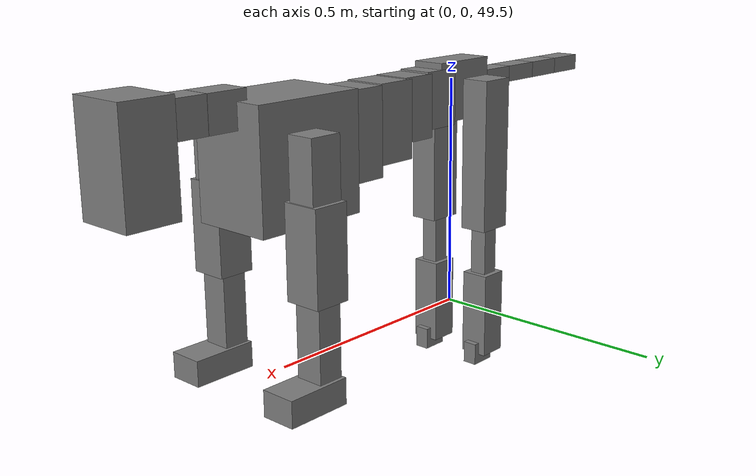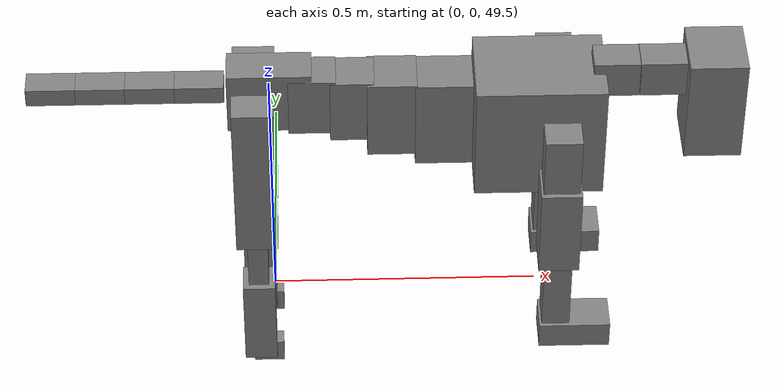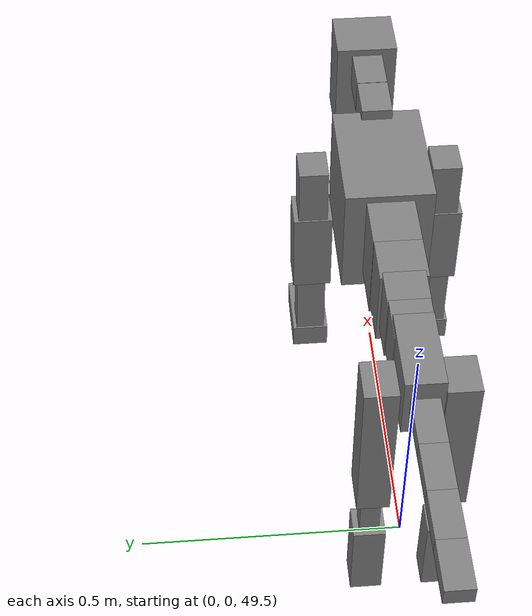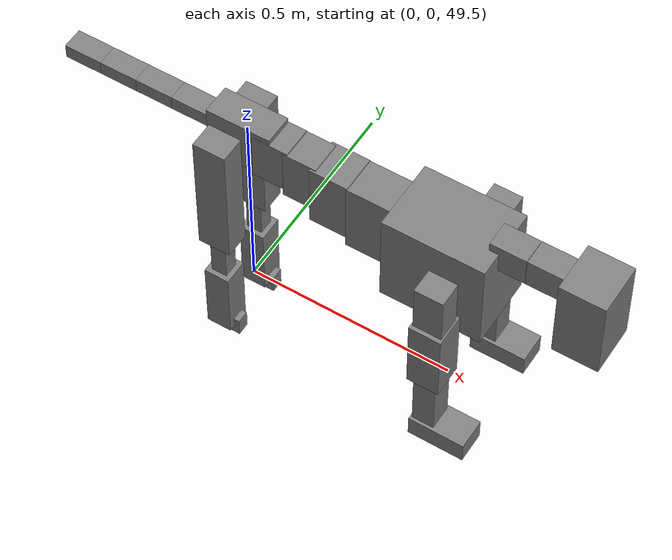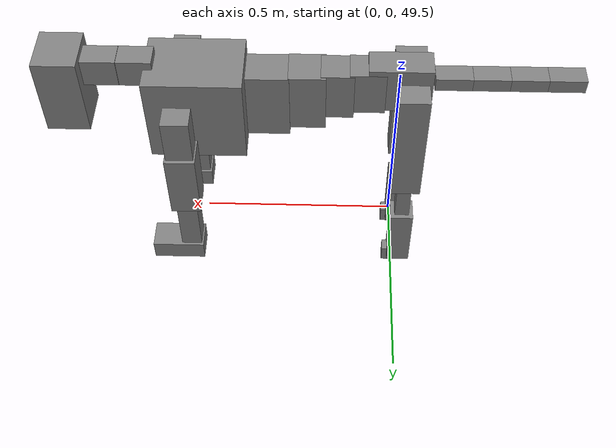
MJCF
<mujoco model="dog">

    <default>
        <joint armature="0.02" stiffness="1" damping="0.2" limited="true"/>
        <geom condim="3" friction="1 0.05 0.05" margin="0.01"/>
        <motor ctrllimited="true" ctrlrange="-1.0 1.0" forcelimited="true" gear="50"/>
    </default>

    <compiler inertiafromgeom="true" angle="radian"/>

    <option timestep="0.016" iterations="50" tolerance="1e-10" solver="Newton" jacobian="dense" cone="pyramidal"/>

    <size nconmax="20000" njmax="60000" nstack="5000000"/>
    <visual>
        <map force="0.1" zfar="30"/>
        <rgba haze="0.15 0.25 0.35 1"/>
        <quality shadowsize="2048"/>
        <global offwidth="800" offheight="800"/>
    </visual>

    <asset>
        <texture type="skybox" builtin="gradient" rgb1="0.3 0.5 0.7" rgb2="0 0 0" width="512" height="512"/>
        <texture name="texplane" type="2d" builtin="checker" rgb1=".2 .3 .4" rgb2=".1 0.15 0.2" width="512" height="512"
                 mark="cross" markrgb=".8 .8 .8"/>
        <texture name="texgeom" type="cube" builtin="flat" mark="cross" width="127" height="1278" rgb1="0.8 0.6 0.4"
                 rgb2="0.8 0.6 0.4" markrgb="1 1 1" random="0.01"/>

        <material name="matplane" reflectance="0.3" texture="texplane" texrepeat="1 1" texuniform="true"/>
        <material name="matgeom" texture="texgeom" texuniform="true" rgba="0.8 0.6 .4 1"/>
    </asset>

    <worldbody>
        <geom name="floor" pos="0 0 0" size="0 0 .25" type="plane" material="matplane" condim="3"/>

        <light directional="false" diffuse=".2 .2 .2" specular="0 0 0" pos="0 0 5" dir="0 0 -1" castshadow="false"/>
        <light mode="targetbodycom" target="torso" directional="false" diffuse=".8 .8 .8" specular="0.3 0.3 0.3"
               pos="0 0 4.0" dir="0 0 -1"/>

        <body name="root" pos="0 0 50">
            <freejoint name="root_1"/>
            <geom type="box" pos="0 0 -0.02" size="0.0774  0.0358  0.063" density="2030"/>

            <body name="spine1" pos="0.054 0 0">
                <joint name="spine1_y" axis="0 1 0" range="0 0.7" limited="true"/>
                <geom type="box" pos="0.02375 0 -0.03" size="0.04375  0.0375  0.05985" density="2030"/>

                <body name="spine2" pos="0.0612 0 0">
                    <joint name="spine2_y" axis="0 1 0" range="-0.15 0.15" limited="true"/>
                    <geom type="box" pos="0.03555  0  -0.04" size="0.04055  0.039  0.06615" density="2030"/>

                    <body name="spine3" pos="0.0730 0 0">
                        <joint name="spine3_y" axis="0 1 0" range="-0.15 0.15" limited="true"/>
                        <geom type="box" pos="0.03555  0  -0.057" size="0.04555  0.0445  0.081" density="2030"/>

                        <body name="spine4" pos="0.0780 0 0">
                            <joint name="spine4_y" axis="0 1 0" range="-0.15 0.15" limited="true"/>
                            <geom type="box" pos="0.05265  0  -0.07" size="0.05265  0.045  0.09135" density="2030"/>

                            <body name="torso" pos="0.1082 0 0">
                                <joint name="torso_y" axis="0 1 0" range="-0.15 0.15" limited="true"/>
                                <geom type="box" pos="0.11925  0  -0.085" size="0.11925  0.085  0.11745"
                                      density="2030"/>

                                <body name="neck1" pos="0.2160  0   0.0180">
                                    <joint name="neck1_y" axis="0 1 0" range="-1.2  -1" limited="true"/>
                                    <geom type="box" pos="0.0423  0  0" size="0.0423  0.03  0.036" density="2325"/>

                                    <body name="neck2" pos="0.0853  0  0">
                                        <joint name="neck2_y" axis="0 1 0" range="0.1  0" limited="true"/>
                                        <geom type="box" pos="0.0423  0  0" size="0.0423  0.03  0.036" density="2325"/>

                                        <body name="head" pos="0.0853  0  0">
                                            <joint name="head_y" axis="0 1 0" range="-0.3  -0.2" limited="true"/>
                                            <geom type="box" pos="0.0531  0  -0.055" size="0.0531  0.06  0.1044"
                                                  density="4030"/>

                                        </body>
                                    </body>
                                </body>

                                <body name="front_shoulder" pos="0.156  0   -0.0480">
                                    <joint name="front_shoulder_y" axis="0 1 0" range="-1 1.5" limited="true"/>
                                    <geom type="box" pos="0 0.13 -0.0467" size="0.0337  0.0288  0.0734" density="1158"/>
                                    <geom type="box" pos="0 -0.13 -0.0467" size="0.0337  0.0288  0.0734"
                                          density="1158"/>

                                    <body name="front_elbow" pos="0  0  -0.0934">
                                        <joint name="front_elbow_y" axis="0 1 0" range="-2 0" limited="true"/>
                                        <geom type="box" pos="0 0.13 -0.0917" size="0.0376  0.0385  0.0917"
                                              density="1081"/>
                                        <geom type="box" pos="0 -0.13 -0.0917" size="0.0376  0.0385  0.0917"
                                              density="1081"/>

                                        <body name="front_wrist" pos="0  0  -0.1833">
                                            <joint name="front_wrist_y" axis="0 1 0" range="-0.2 0" limited="true"/>
                                            <geom type="box" pos="0 0.13 -0.0808" size="0.0262  0.0291  0.0940"
                                                  density="1664"/>
                                            <geom type="box" pos="0 -0.13 -0.0808" size="0.0262  0.0291  0.0940"
                                                  density="1664"/>

                                            <body name="front_finger_end" pos="0  0  -0.1617">
                                                <joint name="front_finger_y" axis="0 1 0" range="-0.4 1"
                                                       limited="true"/>
                                                <geom type="box" pos="0.0365  0.13  -0.0113"
                                                      size="0.0668  0.0365  0.0263" density="1515"/>
                                                <geom type="box" pos="0.0365  -0.13  -0.0113"
                                                      size="0.0668  0.0365  0.0263" density="1515"/>

                                            </body>

                                        </body>
                                    </body>
                                </body>

                            </body>
                        </body>
                    </body>
                </body>
            </body>

            <body name="back_hip" pos="-0.03 0 -0.018">
                <joint name="back_hip_y" axis="0 1 0" range="-1.5 0.3" limited="true"/>
                <geom type="box" pos="0 0.07 -0.1403" size="0.0390  0.0306  0.1631" density="1154"/>
                <geom type="box" pos="0 -0.07 -0.1403" size="0.0390  0.0306  0.1631" density="1154"/>

                <body name="back_knee" pos="0  0  -0.2805">
                    <joint name="back_knee_y" axis="0 1 0" range="0 2.8" limited="true"/>
                    <geom type="box" pos="0 0.07 -0.0686" size="0.0190  0.0187  0.0841" density="1227"/>
                    <geom type="box" pos="0 -0.07 -0.0686" size="0.0190  0.0187  0.0841" density="1227"/>

                    <body name="back_ankle" pos="0  0  -0.1371">
                        <joint name="back_ankle_y" axis="0 1 0" range="-2.2 0" limited="true"/>
                        <geom type="box" pos="0 0.07 -0.0808" size="0.0304  0.0304  0.0921" density="1284"/>
                        <geom type="box" pos="0 -0.07 -0.0808" size="0.0304  0.0304  0.0921" density="1284"/>

                        <body name="back_toe_end" pos="0  0  -0.1616">
                            <joint name="back_toe_y" axis="0 1 0" range="-0.4 1" limited="true"/>
                            <geom type="box" pos="0.0155  0.07  -0.0086" size="0.0284  0.0155  0.0236" density="1515"/>
                            <geom type="box" pos="0.0155  -0.07  -0.0086" size="0.0284  0.0155  0.0236" density="1515"/>

                        </body>
                    </body>
                </body>
            </body>

            <body name="tail1" pos="-0.074 0 -0.006">
                <joint name="tail1_y" axis="0 1 0" range="-0.2 0.2" limited="true"/>
                <geom type="box" pos="-0.0536  0  0" size="0.045  0.025  0.0175" density="1587"/>

                <body name="tail2" pos="-0.09 0 0">
                    <joint name="tail2_y" axis="0 1 0" range="-0.2 0.2" limited="true"/>
                    <geom type="box" pos="-0.0536  0  0" size="0.045  0.025  0.0175" density="1587"/>

                    <body name="tail3" pos="-0.09 0 0">
                        <joint name="tail3_y" axis="0 1 0" range="-0.2 0.2" limited="true"/>
                        <geom type="box" pos="-0.0536  0  0" size="0.045  0.025  0.0175" density="1587"/>

                        <body name="tail4" pos="-0.09 0 0">
                            <joint name="tail4_y" axis="0 1 0" range="-0.2 0.2" limited="true"/>
                            <geom type="box" pos="-0.0536  0  0" size="0.045  0.025  0.0175" density="1587"/>

                        </body>
                    </body>
                </body>
            </body>
        </body>
    </worldbody>

    <actuator>
        <motor joint="spine1_y" forcerange="-150 150     "/>
        <motor joint="spine2_y" forcerange="-150 150     "/>
        <motor joint="spine3_y" forcerange="-150 150     "/>
        <motor joint="spine4_y" forcerange="-150 150     "/>
        <motor joint="torso_y" forcerange="-150 150     "/>
        <motor joint="neck1_y" forcerange="-100 100       "/>
        <motor joint="neck2_y" forcerange="-100 100       "/>
        <motor joint="head_y" forcerange="-150 150       "/>
        <motor joint="front_shoulder_y" forcerange="-122.42 169.60"/>
        <motor joint="front_elbow_y" forcerange="-193.00 186.88"/>
        <motor joint="front_wrist_y" forcerange="-120.84 112.00"/>
        <motor joint="front_finger_y" forcerange="-98.40 56.05"/>
        <motor joint="back_hip_y" forcerange="-258.23 349.58"/>
        <motor joint="back_knee_y" forcerange="-235.79 236.52"/>
        <motor joint="back_angle_y" forcerange="-138.28 247.82"/>
        <motor joint="back_toe_y" forcerange="-23.51 20.34"/>
        <motor joint="tail1_y" forcerange="-50 50     "/>
        <motor joint="tail2_y" forcerange="-50 50     "/>
        <motor joint="tail3_y" forcerange="-50 50     "/>
        <motor joint="tail4_y" forcerange="-50 50     "/>
    </actuator>
</mujoco>
